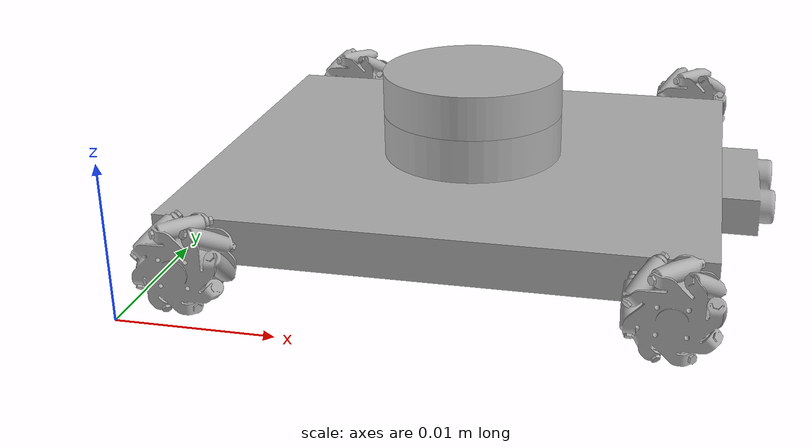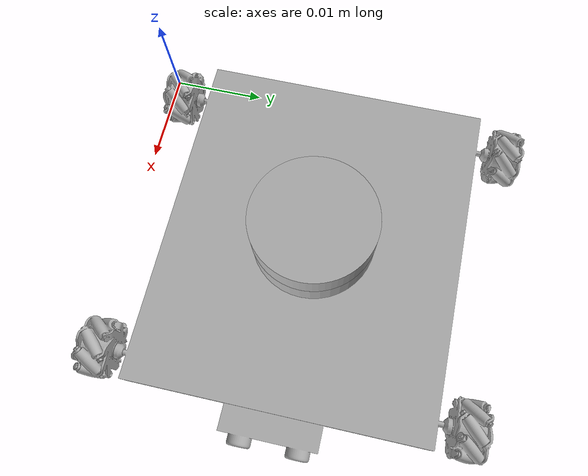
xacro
<?xml version="1.0" ?>
<robot name="robot_test_v23_3" xmlns:xacro="http://www.ros.org/wiki/xacro">

<xacro:include filename="$(find robot_test_v23_3_description)/urdf/materials.xacro" />
<xacro:include filename="$(find robot_test_v23_3_description)/urdf/robot_test_v23_3.trans" />
<xacro:include filename="$(find robot_test_v23_3_description)/urdf/robot_test_v23_3.gazebo" />
<link name="base_link">
  <inertial>
    <origin xyz="0.17588433855330926 0.2049999999999996 0.03334460855831551" rpy="0 0 0"/>
    <mass value="27.646312108347615"/>
    <inertia ixx="0.1931" iyy="0.260001" izz="0.444278" ixy="-0.0" iyz="-0.0" ixz="0.0"/>
  </inertial>
  <visual>
    <origin xyz="0 0 0" rpy="0 0 0"/>
    <geometry>
      <mesh filename="package://robot_test_v23_3_description/meshes/base_link.stl" scale="0.001 0.001 0.001"/>
    </geometry>
    <material name="silver"/>
  </visual>
  <collision>
    <origin xyz="0 0 0" rpy="0 0 0"/>
    <geometry>
      <mesh filename="package://robot_test_v23_3_description/meshes/base_link.stl" scale="0.001 0.001 0.001"/>
    </geometry>
  </collision>
</link>

<link name="forward_left_wheel_v1_1">
  <inertial>
    <origin xyz="-1.181357862961585e-05 0.011279472722703965 -2.7063640497843044e-05" rpy="0 0 0"/>
    <mass value="0.4045809107745589"/>
    <inertia ixx="0.000102" iyy="0.00014" izz="0.000102" ixy="-0.0" iyz="-0.0" ixz="-0.0"/>
  </inertial>
  <visual>
    <origin xyz="-0.325882 -0.375 -0.030193" rpy="0 0 0"/>
    <geometry>
      <mesh filename="package://robot_test_v23_3_description/meshes/forward_left_wheel_v1_1.stl" scale="0.001 0.001 0.001"/>
    </geometry>
    <material name="silver"/>
  </visual>
  <collision>
    <origin xyz="-0.325882 -0.375 -0.030193" rpy="0 0 0"/>
    <geometry>
      <mesh filename="package://robot_test_v23_3_description/meshes/forward_left_wheel_v1_1.stl" scale="0.001 0.001 0.001"/>
    </geometry>
  </collision>
</link>

<link name="forward_right_wheel_v1_1">
  <inertial>
    <origin xyz="1.1093868175438004e-05 -0.011279472722707386 -2.706364049773896e-05" rpy="0 0 0"/>
    <mass value="0.4045809107745436"/>
    <inertia ixx="0.000102" iyy="0.00014" izz="0.000102" ixy="-0.0" iyz="0.0" ixz="0.0"/>
  </inertial>
  <visual>
    <origin xyz="-0.325882 -0.035 -0.030193" rpy="0 0 0"/>
    <geometry>
      <mesh filename="package://robot_test_v23_3_description/meshes/forward_right_wheel_v1_1.stl" scale="0.001 0.001 0.001"/>
    </geometry>
    <material name="silver"/>
  </visual>
  <collision>
    <origin xyz="-0.325882 -0.035 -0.030193" rpy="0 0 0"/>
    <geometry>
      <mesh filename="package://robot_test_v23_3_description/meshes/forward_right_wheel_v1_1.stl" scale="0.001 0.001 0.001"/>
    </geometry>
  </collision>
</link>

<link name="backward_right_wheel_v1_1">
  <inertial>
    <origin xyz="1.1093868175292287e-05 -0.011279472722707278 -2.706364049775284e-05" rpy="0 0 0"/>
    <mass value="0.4045809107745436"/>
    <inertia ixx="0.000102" iyy="0.00014" izz="0.000102" ixy="-0.0" iyz="0.0" ixz="0.0"/>
  </inertial>
  <visual>
    <origin xyz="-0.035882 -0.035 -0.030193" rpy="0 0 0"/>
    <geometry>
      <mesh filename="package://robot_test_v23_3_description/meshes/backward_right_wheel_v1_1.stl" scale="0.001 0.001 0.001"/>
    </geometry>
    <material name="silver"/>
  </visual>
  <collision>
    <origin xyz="-0.035882 -0.035 -0.030193" rpy="0 0 0"/>
    <geometry>
      <mesh filename="package://robot_test_v23_3_description/meshes/backward_right_wheel_v1_1.stl" scale="0.001 0.001 0.001"/>
    </geometry>
  </collision>
</link>

<link name="backward_left_wheel_v1_1">
  <inertial>
    <origin xyz="-1.1813578629768506e-05 0.011279472722703854 -2.706364049779794e-05" rpy="0 0 0"/>
    <mass value="0.4045809107745539"/>
    <inertia ixx="0.000102" iyy="0.00014" izz="0.000102" ixy="-0.0" iyz="-0.0" ixz="-0.0"/>
  </inertial>
  <visual>
    <origin xyz="-0.035882 -0.375 -0.030193" rpy="0 0 0"/>
    <geometry>
      <mesh filename="package://robot_test_v23_3_description/meshes/backward_left_wheel_v1_1.stl" scale="0.001 0.001 0.001"/>
    </geometry>
    <material name="silver"/>
  </visual>
  <collision>
    <origin xyz="-0.035882 -0.375 -0.030193" rpy="0 0 0"/>
    <geometry>
      <mesh filename="package://robot_test_v23_3_description/meshes/backward_left_wheel_v1_1.stl" scale="0.001 0.001 0.001"/>
    </geometry>
  </collision>
</link>

<link name="lidar_1">
  <inertial>
    <origin xyz="-3.598552258954335e-07 -3.3306690738754696e-16 0.015000491814725347" rpy="0 0 0"/>
    <mass value="2.9038918994375553"/>
    <inertia ixx="0.003067" iyy="0.003067" izz="0.005699" ixy="0.0" iyz="0.0" ixz="0.0"/>
  </inertial>
  <visual>
    <origin xyz="-0.175882 -0.205 -0.075193" rpy="0 0 0"/>
    <geometry>
      <mesh filename="package://robot_test_v23_3_description/meshes/lidar_1.stl" scale="0.001 0.001 0.001"/>
    </geometry>
    <material name="silver"/>
  </visual>
  <collision>
    <origin xyz="-0.175882 -0.205 -0.075193" rpy="0 0 0"/>
    <geometry>
      <mesh filename="package://robot_test_v23_3_description/meshes/lidar_1.stl" scale="0.001 0.001 0.001"/>
    </geometry>
  </collision>
</link>

<link name="camera_1">
  <inertial>
    <origin xyz="0.013853712890806058 0.00011008986290131362 4.91821245510865e-07" rpy="0 0 0"/>
    <mass value="0.508211987981016"/>
    <inertia ixx="0.000411" iyy="6.1e-05" izz="0.00042" ixy="-1e-06" iyz="-0.0" ixz="-0.0"/>
  </inertial>
  <visual>
    <origin xyz="-0.350882 -0.205 -0.030193" rpy="0 0 0"/>
    <geometry>
      <mesh filename="package://robot_test_v23_3_description/meshes/camera_1.stl" scale="0.001 0.001 0.001"/>
    </geometry>
    <material name="silver"/>
  </visual>
  <collision>
    <origin xyz="-0.350882 -0.205 -0.030193" rpy="0 0 0"/>
    <geometry>
      <mesh filename="package://robot_test_v23_3_description/meshes/camera_1.stl" scale="0.001 0.001 0.001"/>
    </geometry>
  </collision>
</link>

<joint name="jflw" type="continuous">
  <origin xyz="0.325882 0.375 0.030193" rpy="0 0 0"/>
  <parent link="base_link"/>
  <child link="forward_left_wheel_v1_1"/>
  <axis xyz="0.0 1.0 -0.0"/>
</joint>

<joint name="jfrw" type="continuous">
  <origin xyz="0.325882 0.035 0.030193" rpy="0 0 0"/>
  <parent link="base_link"/>
  <child link="forward_right_wheel_v1_1"/>
  <axis xyz="-0.0 -1.0 0.0"/>
</joint>

<joint name="jrrw" type="continuous">
  <origin xyz="0.035882 0.035 0.030193" rpy="0 0 0"/>
  <parent link="base_link"/>
  <child link="backward_right_wheel_v1_1"/>
  <axis xyz="-0.0 -1.0 0.0"/>
</joint>

<joint name="jrlw" type="continuous">
  <origin xyz="0.035882 0.375 0.030193" rpy="0 0 0"/>
  <parent link="base_link"/>
  <child link="backward_left_wheel_v1_1"/>
  <axis xyz="0.0 1.0 -0.0"/>
</joint>

<joint name="jlidar" type="continuous">
  <origin xyz="0.175882 0.205 0.075193" rpy="0 0 0"/>
  <parent link="base_link"/>
  <child link="lidar_1"/>
  <axis xyz="0.0 -0.0 1.0"/>
</joint>

<joint name="jcam" type="fixed">
  <origin xyz="0.350882 0.205 0.030193" rpy="0 0 0"/>
  <parent link="base_link"/>
  <child link="camera_1"/>
</joint>

</robot>

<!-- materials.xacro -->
<robot name="robot_test_v23_3" xmlns:xacro="http://www.ros.org/wiki/xacro" >

<material name="silver">
  <color rgba="0.700 0.700 0.700 1.000"/>
</material>

</robot>

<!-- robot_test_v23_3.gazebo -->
<robot name="robot_test_v23_3" xmlns:xacro="http://www.ros.org/wiki/xacro" >

<xacro:property name="body_color" value="Gazebo/Silver" />

<gazebo>
  <plugin name="control" filename="libgazebo_ros_control.so"/>
</gazebo>
<gazebo reference="base_link">
  <material>${body_color}</material>
  <mu1>0.2</mu1>
  <mu2>0.2</mu2>
  <selfCollide>true</selfCollide>
  <gravity>true</gravity>
</gazebo>

<gazebo reference="forward_left_wheel_v1_1">
  <material>${body_color}</material>
  <mu1>0.2</mu1>
  <mu2>0.2</mu2>
  <selfCollide>true</selfCollide>
</gazebo>

<gazebo reference="forward_right_wheel_v1_1">
  <material>${body_color}</material>
  <mu1>0.2</mu1>
  <mu2>0.2</mu2>
  <selfCollide>true</selfCollide>
</gazebo>

<gazebo reference="backward_right_wheel_v1_1">
  <material>${body_color}</material>
  <mu1>0.2</mu1>
  <mu2>0.2</mu2>
  <selfCollide>true</selfCollide>
</gazebo>

<gazebo reference="backward_left_wheel_v1_1">
  <material>${body_color}</material>
  <mu1>0.2</mu1>
  <mu2>0.2</mu2>
  <selfCollide>true</selfCollide>
</gazebo>

<gazebo reference="lidar_1">
  <material>${body_color}</material>
  <mu1>0.2</mu1>
  <mu2>0.2</mu2>
  <selfCollide>true</selfCollide>
</gazebo>

<gazebo reference="camera_1">
  <material>${body_color}</material>
  <mu1>0.2</mu1>
  <mu2>0.2</mu2>
  <selfCollide>true</selfCollide>
</gazebo>

</robot>
